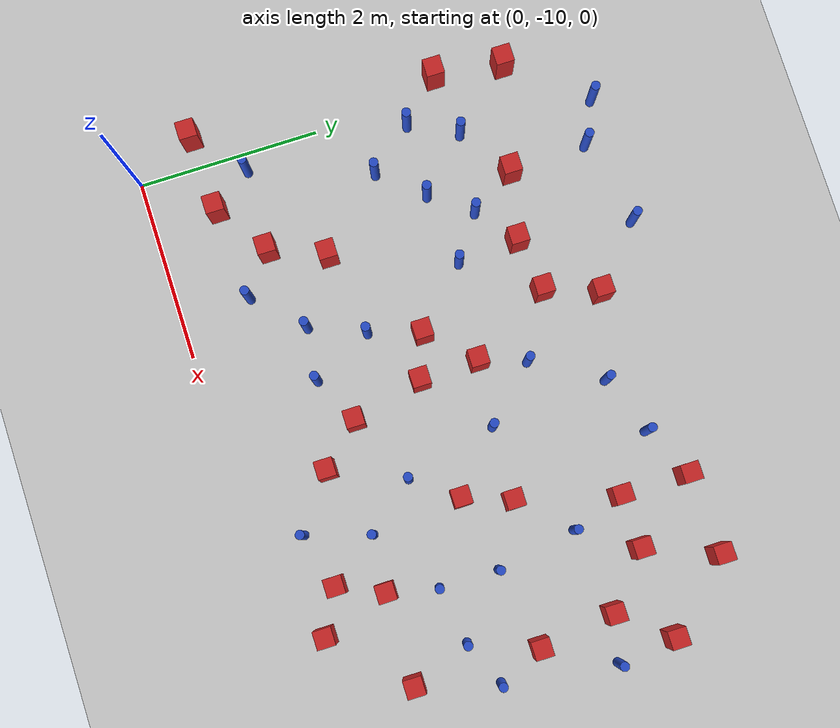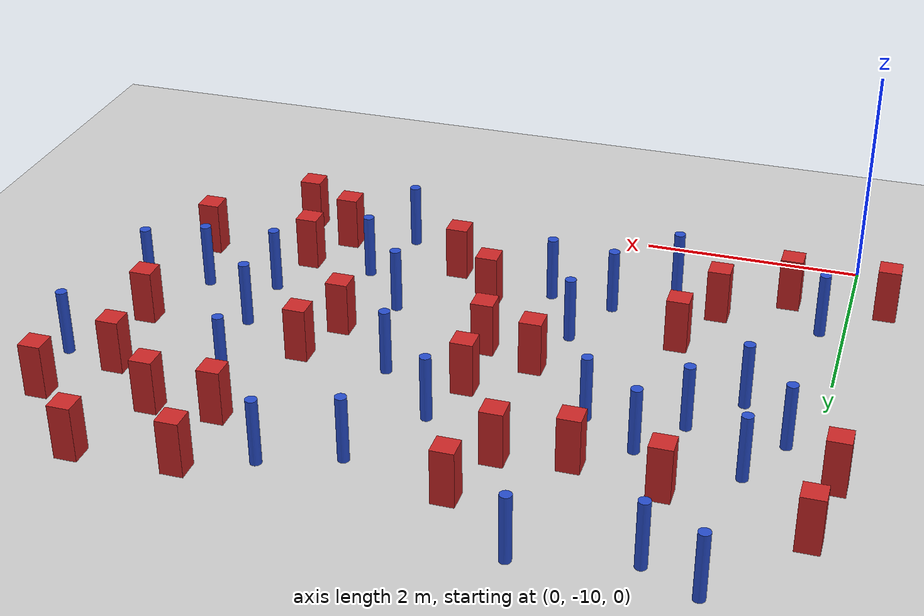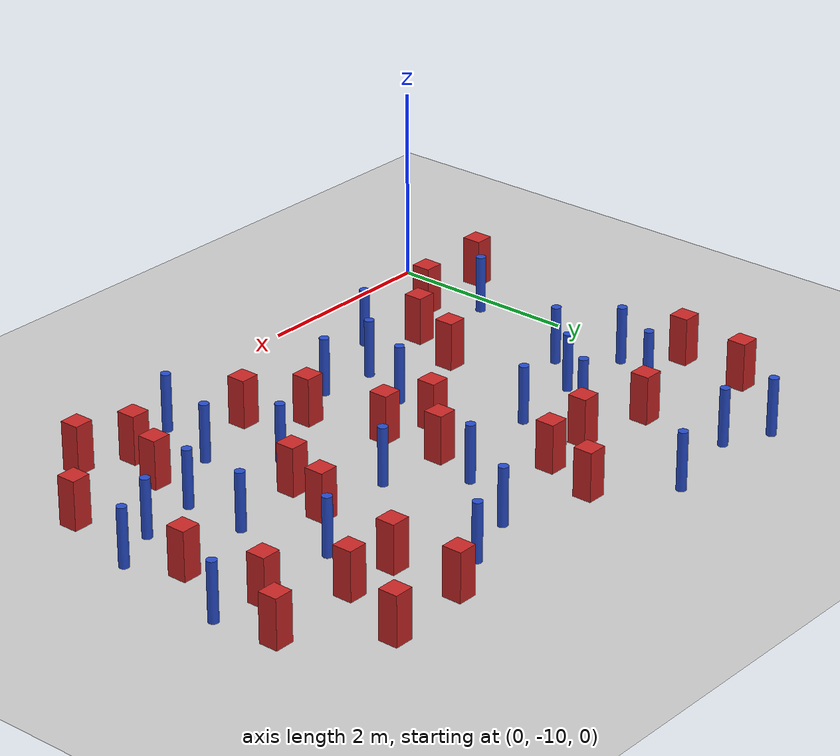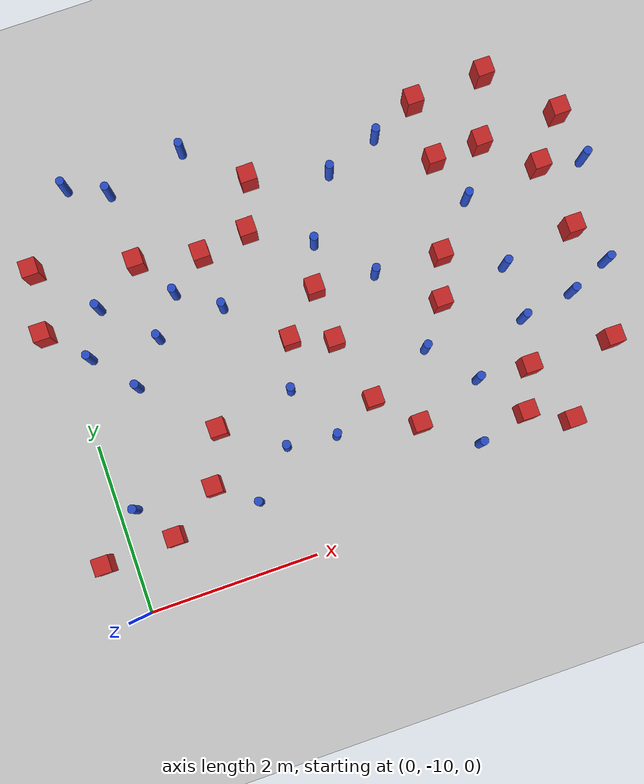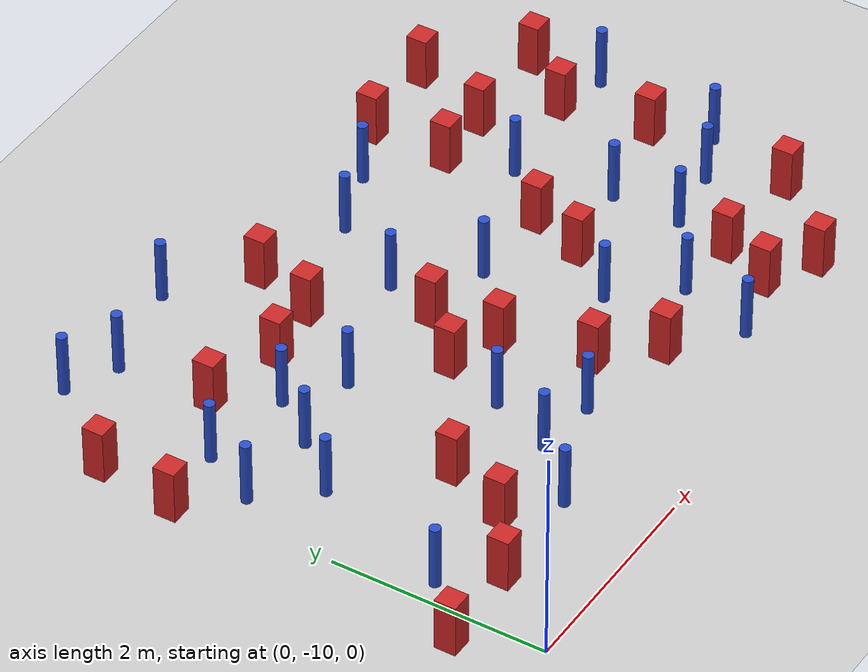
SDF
<sdf version="1.6">
 <world name="default">
  <model name="ground_plane">
   <static>1</static>
   <link name="link">
    <collision name="collision">
     <geometry><plane><normal>0 0 1</normal><size>100 100</size></plane></geometry>
     <surface><friction><ode><mu>100</mu><mu2>50</mu2></ode></friction></surface>
    </collision>
    <visual name="visual">
     <cast_shadows>0</cast_shadows>
     <geometry><plane><normal>0 0 1</normal><size>100 100</size></plane></geometry>
     <material>
      <ambient>1.0 1.0 1.0 1.0</ambient>
      <diffuse>0.8 0.8 0.8 1.0</diffuse>
      <specular>0.01 0.01 0.01 1.000000</specular>
     </material>
    </visual>
   </link>
  </model>
  <model name="pole_obstacle3">
   <static>true</static>
   <pose>5.00161453407 -6.65563241505 7.38925637345e-09 -8.47170692796e-08 1.24976764786e-08 -1.74513093032e-07</pose>
   <link name="link">
    <pose>0 0 0.3 0 -0 0</pose>
    <inertial>
     <mass>1</mass>
     <inertia><ixx>0.145833</ixx><ixy>0</ixy><ixz>0</ixz><iyy>0.145833</iyy><iyz>0</iyz><izz>0.125</izz></inertia>
    </inertial>
    <collision name="collision">
     <geometry><cylinder><radius>0.05</radius><length>.6</length></cylinder></geometry>
    </collision>
    <visual name="visual">
     <geometry><cylinder><radius>0.05</radius><length>.6</length></cylinder></geometry>
     <material>
      <script><name>Gazebo/Blue</name><uri>file://media/materials/scripts/gazebo.material</uri></script>
     </material>
    </visual>
   </link>
  </model>
  <model name="square_post_obstacle6">
   <static>true</static>
   <pose>6.05078648115 -7.38090235444 1.91545236811e-07 -7.35059704564e-06 1.12565212e-07 2.39332434364e-05</pose>
   <link name="link">
    <pose>0 0 0.25 0 -0 0</pose>
    <inertial>
     <mass>100</mass>
     <inertia>
      <ixx>0.166667</ixx>
      <ixy>0</ixy>
      <ixz>0</ixz>
      <iyy>0.166667</iyy>
      <iyz>0</iyz>
      <izz>0.166667</izz>
     </inertia>
    </inertial>
    <collision name="collision"><geometry><box><size>.2 .2 .5</size></box></geometry></collision>
    <visual name="visual">
     <geometry><box><size>.2 .2 .5</size></box></geometry>
     <material>
      <script><name>Gazebo/Red</name><uri>file://media/materials/scripts/gazebo.material</uri></script>
     </material>
    </visual>
   </link>
  </model>
  <model name="square_post_obstacle10">
   <static>true</static>
   <pose>2.50912233527 -7.55386749131 1.91545236811e-07 -7.35059704564e-06 1.12565212e-07 2.39332434364e-05</pose>
   <link name="link">
    <pose>0 0 0.25 0 -0 0</pose>
    <inertial>
     <mass>100</mass>
     <inertia>
      <ixx>0.166667</ixx>
      <ixy>0</ixy>
      <ixz>0</ixz>
      <iyy>0.166667</iyy>
      <iyz>0</iyz>
      <izz>0.166667</izz>
     </inertia>
    </inertial>
    <collision name="collision"><geometry><box><size>.2 .2 .5</size></box></geometry></collision>
    <visual name="visual">
     <geometry><box><size>.2 .2 .5</size></box></geometry>
     <material>
      <script><name>Gazebo/Red</name><uri>file://media/materials/scripts/gazebo.material</uri></script>
     </material>
    </visual>
   </link>
  </model>
  <model name="square_post_obstacle11">
   <static>true</static>
   <pose>2.98952658779 -7.73330978692 1.91545236811e-07 -7.35059704564e-06 1.12565212e-07 2.39332434364e-05</pose>
   <link name="link">
    <pose>0 0 0.25 0 -0 0</pose>
    <inertial>
     <mass>100</mass>
     <inertia>
      <ixx>0.166667</ixx>
      <ixy>0</ixy>
      <ixz>0</ixz>
      <iyy>0.166667</iyy>
      <iyz>0</iyz>
      <izz>0.166667</izz>
     </inertia>
    </inertial>
    <collision name="collision"><geometry><box><size>.2 .2 .5</size></box></geometry></collision>
    <visual name="visual">
     <geometry><box><size>.2 .2 .5</size></box></geometry>
     <material>
      <script><name>Gazebo/Red</name><uri>file://media/materials/scripts/gazebo.material</uri></script>
     </material>
    </visual>
   </link>
  </model>
  <model name="square_post_obstacle14">
   <static>true</static>
   <pose>4.31348551052 -7.69776963985 1.91545236811e-07 -7.35059704564e-06 1.12565212e-07 2.39332434364e-05</pose>
   <link name="link">
    <pose>0 0 0.25 0 -0 0</pose>
    <inertial>
     <mass>100</mass>
     <inertia>
      <ixx>0.166667</ixx>
      <ixy>0</ixy>
      <ixz>0</ixz>
      <iyy>0.166667</iyy>
      <iyz>0</iyz>
      <izz>0.166667</izz>
     </inertia>
    </inertial>
    <collision name="collision"><geometry><box><size>.2 .2 .5</size></box></geometry></collision>
    <visual name="visual">
     <geometry><box><size>.2 .2 .5</size></box></geometry>
     <material>
      <script><name>Gazebo/Red</name><uri>file://media/materials/scripts/gazebo.material</uri></script>
     </material>
    </visual>
   </link>
  </model>
  <model name="pole_obstacle10">
   <static>true</static>
   <pose>2.01584505865 -5.01099669691 7.38925637345e-09 -8.47170692799e-08 1.24976765014e-08 -1.7451309302e-07</pose>
   <link name="link">
    <pose>0 0 0.3 0 -0 0</pose>
    <inertial>
     <mass>1</mass>
     <inertia><ixx>0.145833</ixx><ixy>0</ixy><ixz>0</ixz><iyy>0.145833</iyy><iyz>0</iyz><izz>0.125</izz></inertia>
    </inertial>
    <collision name="collision">
     <geometry><cylinder><radius>0.05</radius><length>.6</length></cylinder></geometry>
    </collision>
    <visual name="visual">
     <geometry><cylinder><radius>0.05</radius><length>.6</length></cylinder></geometry>
     <material>
      <script><name>Gazebo/Blue</name><uri>file://media/materials/scripts/gazebo.material</uri></script>
     </material>
    </visual>
   </link>
  </model>
  <model name="square_post_obstacle29">
   <static>true</static>
   <pose>5.69340688387 -5.28129569406 1.91545236811e-07 -7.35059704564e-06 1.12565212e-07 2.39332434364e-05</pose>
   <link name="link">
    <pose>0 0 0.25 0 -0 0</pose>
    <inertial>
     <mass>100</mass>
     <inertia>
      <ixx>0.166667</ixx>
      <ixy>0</ixy>
      <ixz>0</ixz>
      <iyy>0.166667</iyy>
      <iyz>0</iyz>
      <izz>0.166667</izz>
     </inertia>
    </inertial>
    <collision name="collision"><geometry><box><size>.2 .2 .5</size></box></geometry></collision>
    <visual name="visual">
     <geometry><box><size>.2 .2 .5</size></box></geometry>
     <material>
      <script><name>Gazebo/Red</name><uri>file://media/materials/scripts/gazebo.material</uri></script>
     </material>
    </visual>
   </link>
  </model>
  <model name="pole_obstacle20">
   <static>true</static>
   <pose>1.07511665851 -7.0514755231 7.38925637345e-09 -8.47170692799e-08 1.24976765033e-08 -1.74513093018e-07</pose>
   <link name="link">
    <pose>0 0 0.3 0 -0 0</pose>
    <inertial>
     <mass>1</mass>
     <inertia><ixx>0.145833</ixx><ixy>0</ixy><ixz>0</ixz><iyy>0.145833</iyy><iyz>0</iyz><izz>0.125</izz></inertia>
    </inertial>
    <collision name="collision">
     <geometry><cylinder><radius>0.05</radius><length>.6</length></cylinder></geometry>
    </collision>
    <visual name="visual">
     <geometry><cylinder><radius>0.05</radius><length>.6</length></cylinder></geometry>
     <material>
      <script><name>Gazebo/Blue</name><uri>file://media/materials/scripts/gazebo.material</uri></script>
     </material>
    </visual>
   </link>
  </model>
  <model name="pole_obstacle26">
   <static>true</static>
   <pose>4.18921879778 -9.4074121447 7.38925637345e-09 -8.471706928e-08 1.24976765081e-08 -1.74513093015e-07</pose>
   <link name="link">
    <pose>0 0 0.3 0 -0 0</pose>
    <inertial>
     <mass>1</mass>
     <inertia><ixx>0.145833</ixx><ixy>0</ixy><ixz>0</ixz><iyy>0.145833</iyy><iyz>0</iyz><izz>0.125</izz></inertia>
    </inertial>
    <collision name="collision">
     <geometry><cylinder><radius>0.05</radius><length>.6</length></cylinder></geometry>
    </collision>
    <visual name="visual">
     <geometry><cylinder><radius>0.05</radius><length>.6</length></cylinder></geometry>
     <material>
      <script><name>Gazebo/Blue</name><uri>file://media/materials/scripts/gazebo.material</uri></script>
     </material>
    </visual>
   </link>
  </model>
  <model name="pole_obstacle36">
   <static>true</static>
   <pose>1.05467171235 -5.22719770016 7.38925637345e-09 -8.47170692799e-08 1.24976765033e-08 -1.74513093018e-07</pose>
   <link name="link">
    <pose>0 0 0.3 0 -0 0</pose>
    <inertial>
     <mass>1</mass>
     <inertia><ixx>0.145833</ixx><ixy>0</ixy><ixz>0</ixz><iyy>0.145833</iyy><iyz>0</iyz><izz>0.125</izz></inertia>
    </inertial>
    <collision name="collision">
     <geometry><cylinder><radius>0.05</radius><length>.6</length></cylinder></geometry>
    </collision>
    <visual name="visual">
     <geometry><cylinder><radius>0.05</radius><length>.6</length></cylinder></geometry>
     <material>
      <script><name>Gazebo/Blue</name><uri>file://media/materials/scripts/gazebo.material</uri></script>
     </material>
    </visual>
   </link>
  </model>
  <model name="square_post_obstacle36">
   <static>true</static>
   <pose>5.27091991104 -9.48905202881 1.91545236811e-07 -7.35059704564e-06 1.12565212e-07 2.39332434364e-05</pose>
   <link name="link">
    <pose>0 0 0.25 0 -0 0</pose>
    <inertial>
     <mass>100</mass>
     <inertia>
      <ixx>0.166667</ixx>
      <ixy>0</ixy>
      <ixz>0</ixz>
      <iyy>0.166667</iyy>
      <iyz>0</iyz>
      <izz>0.166667</izz>
     </inertia>
    </inertial>
    <collision name="collision"><geometry><box><size>.2 .2 .5</size></box></geometry></collision>
    <visual name="visual">
     <geometry><box><size>.2 .2 .5</size></box></geometry>
     <material>
      <script><name>Gazebo/Red</name><uri>file://media/materials/scripts/gazebo.material</uri></script>
     </material>
    </visual>
   </link>
  </model>
  <model name="pole_obstacle40">
   <static>true</static>
   <pose>3.14173892283 -6.57104107852 7.38925637345e-09 -8.47170692798e-08 1.24976765033e-08 -1.74513093019e-07</pose>
   <link name="link">
    <pose>0 0 0.3 0 -0 0</pose>
    <inertial>
     <mass>1</mass>
     <inertia><ixx>0.145833</ixx><ixy>0</ixy><ixz>0</ixz><iyy>0.145833</iyy><iyz>0</iyz><izz>0.125</izz></inertia>
    </inertial>
    <collision name="collision">
     <geometry><cylinder><radius>0.05</radius><length>.6</length></cylinder></geometry>
    </collision>
    <visual name="visual">
     <geometry><cylinder><radius>0.05</radius><length>.6</length></cylinder></geometry>
     <material>
      <script><name>Gazebo/Blue</name><uri>file://media/materials/scripts/gazebo.material</uri></script>
     </material>
    </visual>
   </link>
  </model>
  <model name="square_post_obstacle41">
   <static>true</static>
   <pose>3.60693150186 -8.96799437698 1.91545236811e-07 -7.35059704564e-06 1.12565212e-07 2.39332434364e-05</pose>
   <link name="link">
    <pose>0 0 0.25 0 -0 0</pose>
    <inertial>
     <mass>100</mass>
     <inertia>
      <ixx>0.166667</ixx>
      <ixy>0</ixy>
      <ixz>0</ixz>
      <iyy>0.166667</iyy>
      <iyz>0</iyz>
      <izz>0.166667</izz>
     </inertia>
    </inertial>
    <collision name="collision"><geometry><box><size>.2 .2 .5</size></box></geometry></collision>
    <visual name="visual">
     <geometry><box><size>.2 .2 .5</size></box></geometry>
     <material>
      <script><name>Gazebo/Red</name><uri>file://media/materials/scripts/gazebo.material</uri></script>
     </material>
    </visual>
   </link>
  </model>
  <model name="square_post_obstacle42">
   <static>true</static>
   <pose>6.37140110075 -6.01066714493 1.91545236811e-07 -7.35059704564e-06 1.12565212e-07 2.39332434364e-05</pose>
   <link name="link">
    <pose>0 0 0.25 0 -0 0</pose>
    <inertial>
     <mass>100</mass>
     <inertia>
      <ixx>0.166667</ixx>
      <ixy>0</ixy>
      <ixz>0</ixz>
      <iyy>0.166667</iyy>
      <iyz>0</iyz>
      <izz>0.166667</izz>
     </inertia>
    </inertial>
    <collision name="collision"><geometry><box><size>.2 .2 .5</size></box></geometry></collision>
    <visual name="visual">
     <geometry><box><size>.2 .2 .5</size></box></geometry>
     <material>
      <script><name>Gazebo/Red</name><uri>file://media/materials/scripts/gazebo.material</uri></script>
     </material>
    </visual>
   </link>
  </model>
  <model name="pole_obstacle47">
   <static>true</static>
   <pose>4.23477064526 -5.59500006516 7.38925637345e-09 -8.47170692796e-08 1.24976764786e-08 -1.74513093032e-07</pose>
   <link name="link">
    <pose>0 0 0.3 0 -0 0</pose>
    <inertial>
     <mass>1</mass>
     <inertia><ixx>0.145833</ixx><ixy>0</ixy><ixz>0</ixz><iyy>0.145833</iyy><iyz>0</iyz><izz>0.125</izz></inertia>
    </inertial>
    <collision name="collision">
     <geometry><cylinder><radius>0.05</radius><length>.6</length></cylinder></geometry>
    </collision>
    <visual name="visual">
     <geometry><cylinder><radius>0.05</radius><length>.6</length></cylinder></geometry>
     <material>
      <script><name>Gazebo/Blue</name><uri>file://media/materials/scripts/gazebo.material</uri></script>
     </material>
    </visual>
   </link>
  </model>
  <model name="square_post_obstacle55">
   <static>true</static>
   <pose>5.01877675959 -8.74681724922 1.91545236811e-07 -7.35059704564e-06 1.12565212e-07 2.39332434364e-05</pose>
   <link name="link">
    <pose>0 0 0.25 0 -0 0</pose>
    <inertial>
     <mass>100</mass>
     <inertia>
      <ixx>0.166667</ixx>
      <ixy>0</ixy>
      <ixz>0</ixz>
      <iyy>0.166667</iyy>
      <iyz>0</iyz>
      <izz>0.166667</izz>
     </inertia>
    </inertial>
    <collision name="collision"><geometry><box><size>.2 .2 .5</size></box></geometry></collision>
    <visual name="visual">
     <geometry><box><size>.2 .2 .5</size></box></geometry>
     <material>
      <script><name>Gazebo/Red</name><uri>file://media/materials/scripts/gazebo.material</uri></script>
     </material>
    </visual>
   </link>
  </model>
  <model name="pole_obstacle52">
   <static>true</static>
   <pose>1.57583910471 -9.21745637014 7.38925637345e-09 -8.47170692798e-08 1.24976764881e-08 -1.74513093027e-07</pose>
   <link name="link">
    <pose>0 0 0.3 0 -0 0</pose>
    <inertial>
     <mass>1</mass>
     <inertia><ixx>0.145833</ixx><ixy>0</ixy><ixz>0</ixz><iyy>0.145833</iyy><iyz>0</iyz><izz>0.125</izz></inertia>
    </inertial>
    <collision name="collision">
     <geometry><cylinder><radius>0.05</radius><length>.6</length></cylinder></geometry>
    </collision>
    <visual name="visual">
     <geometry><cylinder><radius>0.05</radius><length>.6</length></cylinder></geometry>
     <material>
      <script><name>Gazebo/Blue</name><uri>file://media/materials/scripts/gazebo.material</uri></script>
     </material>
    </visual>
   </link>
  </model>
  <model name="square_post_obstacle57">
   <static>true</static>
   <pose>1.09560624676 -6.1105834641 1.91545236811e-07 -7.35059704564e-06 1.12565212e-07 2.39332434364e-05</pose>
   <link name="link">
    <pose>0 0 0.25 0 -0 0</pose>
    <inertial>
     <mass>100</mass>
     <inertia>
      <ixx>0.166667</ixx>
      <ixy>0</ixy>
      <ixz>0</ixz>
      <iyy>0.166667</iyy>
      <iyz>0</iyz>
      <izz>0.166667</izz>
     </inertia>
    </inertial>
    <collision name="collision"><geometry><box><size>.2 .2 .5</size></box></geometry></collision>
    <visual name="visual">
     <geometry><box><size>.2 .2 .5</size></box></geometry>
     <material>
      <script><name>Gazebo/Red</name><uri>file://media/materials/scripts/gazebo.material</uri></script>
     </material>
    </visual>
   </link>
  </model>
  <model name="pole_obstacle62">
   <static>true</static>
   <pose>0.586006470978 -5.00266563167 7.38925637345e-09 -8.471706928e-08 1.24976765086e-08 -1.74513093015e-07</pose>
   <link name="link">
    <pose>0 0 0.3 0 -0 0</pose>
    <inertial>
     <mass>1</mass>
     <inertia><ixx>0.145833</ixx><ixy>0</ixy><ixz>0</ixz><iyy>0.145833</iyy><iyz>0</iyz><izz>0.125</izz></inertia>
    </inertial>
    <collision name="collision">
     <geometry><cylinder><radius>0.05</radius><length>.6</length></cylinder></geometry>
    </collision>
    <visual name="visual">
     <geometry><cylinder><radius>0.05</radius><length>.6</length></cylinder></geometry>
     <material>
      <script><name>Gazebo/Blue</name><uri>file://media/materials/scripts/gazebo.material</uri></script>
     </material>
    </visual>
   </link>
  </model>
  <model name="square_post_obstacle69">
   <static>true</static>
   <pose>2.65408206465 -5.58776047129 1.91545236811e-07 -7.35059704564e-06 1.12565212e-07 2.39332434364e-05</pose>
   <link name="link">
    <pose>0 0 0.25 0 -0 0</pose>
    <inertial>
     <mass>100</mass>
     <inertia>
      <ixx>0.166667</ixx>
      <ixy>0</ixy>
      <ixz>0</ixz>
      <iyy>0.166667</iyy>
      <iyz>0</iyz>
      <izz>0.166667</izz>
     </inertia>
    </inertial>
    <collision name="collision"><geometry><box><size>.2 .2 .5</size></box></geometry></collision>
    <visual name="visual">
     <geometry><box><size>.2 .2 .5</size></box></geometry>
     <material>
      <script><name>Gazebo/Red</name><uri>file://media/materials/scripts/gazebo.material</uri></script>
     </material>
    </visual>
   </link>
  </model>
  <model name="pole_obstacle67">
   <static>true</static>
   <pose>5.15801422053 -7.5465787388 7.38925637345e-09 -8.47170692796e-08 1.24976764786e-08 -1.74513093032e-07</pose>
   <link name="link">
    <pose>0 0 0.3 0 -0 0</pose>
    <inertial>
     <mass>1</mass>
     <inertia><ixx>0.145833</ixx><ixy>0</ixy><ixz>0</ixz><iyy>0.145833</iyy><iyz>0</iyz><izz>0.125</izz></inertia>
    </inertial>
    <collision name="collision">
     <geometry><cylinder><radius>0.05</radius><length>.6</length></cylinder></geometry>
    </collision>
    <visual name="visual">
     <geometry><cylinder><radius>0.05</radius><length>.6</length></cylinder></geometry>
     <material>
      <script><name>Gazebo/Blue</name><uri>file://media/materials/scripts/gazebo.material</uri></script>
     </material>
    </visual>
   </link>
  </model>
  <model name="square_post_obstacle73">
   <static>true</static>
   <pose>4.79727907932 -9.23521522652 1.91545236811e-07 -7.35059704564e-06 1.12565212e-07 2.39332434364e-05</pose>
   <link name="link">
    <pose>0 0 0.25 0 -0 0</pose>
    <inertial>
     <mass>100</mass>
     <inertia>
      <ixx>0.166667</ixx>
      <ixy>0</ixy>
      <ixz>0</ixz>
      <iyy>0.166667</iyy>
      <iyz>0</iyz>
      <izz>0.166667</izz>
     </inertia>
    </inertial>
    <collision name="collision"><geometry><box><size>.2 .2 .5</size></box></geometry></collision>
    <visual name="visual">
     <geometry><box><size>.2 .2 .5</size></box></geometry>
     <material>
      <script><name>Gazebo/Red</name><uri>file://media/materials/scripts/gazebo.material</uri></script>
     </material>
    </visual>
   </link>
  </model>
  <model name="pole_obstacle70">
   <static>true</static>
   <pose>2.07500734429 -8.72048961867 7.38925637345e-09 -8.47170692793e-08 1.24976764408e-08 -1.74513093041e-07</pose>
   <link name="link">
    <pose>0 0 0.3 0 -0 0</pose>
    <inertial>
     <mass>1</mass>
     <inertia><ixx>0.145833</ixx><ixy>0</ixy><ixz>0</ixz><iyy>0.145833</iyy><iyz>0</iyz><izz>0.125</izz></inertia>
    </inertial>
    <collision name="collision">
     <geometry><cylinder><radius>0.05</radius><length>.6</length></cylinder></geometry>
    </collision>
    <visual name="visual">
     <geometry><cylinder><radius>0.05</radius><length>.6</length></cylinder></geometry>
     <material>
      <script><name>Gazebo/Blue</name><uri>file://media/materials/scripts/gazebo.material</uri></script>
     </material>
    </visual>
   </link>
  </model>
  <model name="pole_obstacle76">
   <static>true</static>
   <pose>0.254293867741 -7.02089184477 7.38925637345e-09 -8.47170692799e-08 1.24976765101e-08 -1.74513093014e-07</pose>
   <link name="link">
    <pose>0 0 0.3 0 -0 0</pose>
    <inertial>
     <mass>1</mass>
     <inertia><ixx>0.145833</ixx><ixy>0</ixy><ixz>0</ixz><iyy>0.145833</iyy><iyz>0</iyz><izz>0.125</izz></inertia>
    </inertial>
    <collision name="collision">
     <geometry><cylinder><radius>0.05</radius><length>.6</length></cylinder></geometry>
    </collision>
    <visual name="visual">
     <geometry><cylinder><radius>0.05</radius><length>.6</length></cylinder></geometry>
     <material>
      <script><name>Gazebo/Blue</name><uri>file://media/materials/scripts/gazebo.material</uri></script>
     </material>
    </visual>
   </link>
  </model>
  <model name="square_post_obstacle81">
   <static>true</static>
   <pose>5.94193825845 -6.54380221645 1.91545236811e-07 -7.35059704564e-06 1.12565212e-07 2.39332434364e-05</pose>
   <link name="link">
    <pose>0 0 0.25 0 -0 0</pose>
    <inertial>
     <mass>100</mass>
     <inertia>
      <ixx>0.166667</ixx>
      <ixy>0</ixy>
      <ixz>0</ixz>
      <iyy>0.166667</iyy>
      <iyz>0</iyz>
      <izz>0.166667</izz>
     </inertia>
    </inertial>
    <collision name="collision"><geometry><box><size>.2 .2 .5</size></box></geometry></collision>
    <visual name="visual">
     <geometry><box><size>.2 .2 .5</size></box></geometry>
     <material>
      <script><name>Gazebo/Red</name><uri>file://media/materials/scripts/gazebo.material</uri></script>
     </material>
    </visual>
   </link>
  </model>
  <model name="pole_obstacle88">
   <static>true</static>
   <pose>3.95771335629 -8.16842878115 7.38925637345e-09 -8.47170692793e-08 1.24976764405e-08 -1.74513093041e-07</pose>
   <link name="link">
    <pose>0 0 0.3 0 -0 0</pose>
    <inertial>
     <mass>1</mass>
     <inertia><ixx>0.145833</ixx><ixy>0</ixy><ixz>0</ixz><iyy>0.145833</iyy><iyz>0</iyz><izz>0.125</izz></inertia>
    </inertial>
    <collision name="collision">
     <geometry><cylinder><radius>0.05</radius><length>.6</length></cylinder></geometry>
    </collision>
    <visual name="visual">
     <geometry><cylinder><radius>0.05</radius><length>.6</length></cylinder></geometry>
     <material>
      <script><name>Gazebo/Blue</name><uri>file://media/materials/scripts/gazebo.material</uri></script>
     </material>
    </visual>
   </link>
  </model>
  <model name="pole_obstacle93">
   <static>true</static>
   <pose>0.523946703772 -6.49540256584 7.38925637345e-09 -8.47170692799e-08 1.24976765073e-08 -1.74513093015e-07</pose>
   <link name="link">
    <pose>0 0 0.3 0 -0 0</pose>
    <inertial>
     <mass>1</mass>
     <inertia><ixx>0.145833</ixx><ixy>0</ixy><ixz>0</ixz><iyy>0.145833</iyy><iyz>0</iyz><izz>0.125</izz></inertia>
    </inertial>
    <collision name="collision">
     <geometry><cylinder><radius>0.05</radius><length>.6</length></cylinder></geometry>
    </collision>
    <visual name="visual">
     <geometry><cylinder><radius>0.05</radius><length>.6</length></cylinder></geometry>
     <material>
      <script><name>Gazebo/Blue</name><uri>file://media/materials/scripts/gazebo.material</uri></script>
     </material>
    </visual>
   </link>
  </model>
  <model name="pole_obstacle105">
   <static>true</static>
   <pose>3.58492762385 -5.83124893988 7.38925637345e-09 -8.47170692798e-08 1.24976765033e-08 -1.74513093019e-07</pose>
   <link name="link">
    <pose>0 0 0.3 0 -0 0</pose>
    <inertial>
     <mass>1</mass>
     <inertia><ixx>0.145833</ixx><ixy>0</ixy><ixz>0</ixz><iyy>0.145833</iyy><iyz>0</iyz><izz>0.125</izz></inertia>
    </inertial>
    <collision name="collision">
     <geometry><cylinder><radius>0.05</radius><length>.6</length></cylinder></geometry>
    </collision>
    <visual name="visual">
     <geometry><cylinder><radius>0.05</radius><length>.6</length></cylinder></geometry>
     <material>
      <script><name>Gazebo/Blue</name><uri>file://media/materials/scripts/gazebo.material</uri></script>
     </material>
    </visual>
   </link>
  </model>
  <model name="pole_obstacle106">
   <static>true</static>
   <pose>6.28519339228 -7.884198596 7.38925637345e-09 -8.47170692796e-08 1.24976764786e-08 -1.74513093032e-07</pose>
   <link name="link">
    <pose>0 0 0.3 0 -0 0</pose>
    <inertial>
     <mass>1</mass>
     <inertia><ixx>0.145833</ixx><ixy>0</ixy><ixz>0</ixz><iyy>0.145833</iyy><iyz>0</iyz><izz>0.125</izz></inertia>
    </inertial>
    <collision name="collision">
     <geometry><cylinder><radius>0.05</radius><length>.6</length></cylinder></geometry>
    </collision>
    <visual name="visual">
     <geometry><cylinder><radius>0.05</radius><length>.6</length></cylinder></geometry>
     <material>
      <script><name>Gazebo/Blue</name><uri>file://media/materials/scripts/gazebo.material</uri></script>
     </material>
    </visual>
   </link>
  </model>
  <model name="pole_obstacle115">
   <static>true</static>
   <pose>2.6579866676 -8.78523901186 7.38925637345e-09 -8.47170692793e-08 1.24976764408e-08 -1.74513093041e-07</pose>
   <link name="link">
    <pose>0 0 0.3 0 -0 0</pose>
    <inertial>
     <mass>1</mass>
     <inertia><ixx>0.145833</ixx><ixy>0</ixy><ixz>0</ixz><iyy>0.145833</iyy><iyz>0</iyz><izz>0.125</izz></inertia>
    </inertial>
    <collision name="collision">
     <geometry><cylinder><radius>0.05</radius><length>.6</length></cylinder></geometry>
    </collision>
    <visual name="visual">
     <geometry><cylinder><radius>0.05</radius><length>.6</length></cylinder></geometry>
     <material>
      <script><name>Gazebo/Blue</name><uri>file://media/materials/scripts/gazebo.material</uri></script>
     </material>
    </visual>
   </link>
  </model>
  <model name="square_post_obstacle109">
   <static>true</static>
   <pose>2.96975866536 -7.07996548812 1.91545236811e-07 -7.35059704564e-06 1.12565212e-07 2.39332434364e-05</pose>
   <link name="link">
    <pose>0 0 0.25 0 -0 0</pose>
    <inertial>
     <mass>100</mass>
     <inertia>
      <ixx>0.166667</ixx>
      <ixy>0</ixy>
      <ixz>0</ixz>
      <iyy>0.166667</iyy>
      <iyz>0</iyz>
      <izz>0.166667</izz>
     </inertia>
    </inertial>
    <collision name="collision"><geometry><box><size>.2 .2 .5</size></box></geometry></collision>
    <visual name="visual">
     <geometry><box><size>.2 .2 .5</size></box></geometry>
     <material>
      <script><name>Gazebo/Red</name><uri>file://media/materials/scripts/gazebo.material</uri></script>
     </material>
    </visual>
   </link>
  </model>
  <model name="square_post_obstacle110">
   <static>true</static>
   <pose>4.79668433501 -6.08466083333 1.91545236811e-07 -7.35059704564e-06 1.12565212e-07 2.39332434364e-05</pose>
   <link name="link">
    <pose>0 0 0.25 0 -0 0</pose>
    <inertial>
     <mass>100</mass>
     <inertia>
      <ixx>0.166667</ixx>
      <ixy>0</ixy>
      <ixz>0</ixz>
      <iyy>0.166667</iyy>
      <iyz>0</iyz>
      <izz>0.166667</izz>
     </inertia>
    </inertial>
    <collision name="collision"><geometry><box><size>.2 .2 .5</size></box></geometry></collision>
    <visual name="visual">
     <geometry><box><size>.2 .2 .5</size></box></geometry>
     <material>
      <script><name>Gazebo/Red</name><uri>file://media/materials/scripts/gazebo.material</uri></script>
     </material>
    </visual>
   </link>
  </model>
  <model name="square_post_obstacle111">
   <static>true</static>
   <pose>-0.315592153126 -9.32040250138 1.91545236811e-07 -7.35059704564e-06 1.12565212e-07 2.39332434364e-05</pose>
   <link name="link">
    <pose>0 0 0.25 0 -0 0</pose>
    <inertial>
     <mass>100</mass>
     <inertia>
      <ixx>0.166667</ixx>
      <ixy>0</ixy>
      <ixz>0</ixz>
      <iyy>0.166667</iyy>
      <iyz>0</iyz>
      <izz>0.166667</izz>
     </inertia>
    </inertial>
    <collision name="collision"><geometry><box><size>.2 .2 .5</size></box></geometry></collision>
    <visual name="visual">
     <geometry><box><size>.2 .2 .5</size></box></geometry>
     <material>
      <script><name>Gazebo/Red</name><uri>file://media/materials/scripts/gazebo.material</uri></script>
     </material>
    </visual>
   </link>
  </model>
  <model name="pole_obstacle128">
   <static>true</static>
   <pose>1.4116408151 -6.60987289272 7.38925637345e-09 -8.47170692799e-08 1.24976765033e-08 -1.74513093018e-07</pose>
   <link name="link">
    <pose>0 0 0.3 0 -0 0</pose>
    <inertial>
     <mass>1</mass>
     <inertia><ixx>0.145833</ixx><ixy>0</ixy><ixz>0</ixz><iyy>0.145833</iyy><iyz>0</iyz><izz>0.125</izz></inertia>
    </inertial>
    <collision name="collision">
     <geometry><cylinder><radius>0.05</radius><length>.6</length></cylinder></geometry>
    </collision>
    <visual name="visual">
     <geometry><cylinder><radius>0.05</radius><length>.6</length></cylinder></geometry>
     <material>
      <script><name>Gazebo/Blue</name><uri>file://media/materials/scripts/gazebo.material</uri></script>
     </material>
    </visual>
   </link>
  </model>
  <model name="square_post_obstacle114">
   <static>true</static>
   <pose>-0.0765258356455 -5.82317347467 1.91545236811e-07 -7.35059704564e-06 1.12565212e-07 2.39332434364e-05</pose>
   <link name="link">
    <pose>0 0 0.25 0 -0 0</pose>
    <inertial>
     <mass>100</mass>
     <inertia>
      <ixx>0.166667</ixx>
      <ixy>0</ixy>
      <ixz>0</ixz>
      <iyy>0.166667</iyy>
      <iyz>0</iyz>
      <izz>0.166667</izz>
     </inertia>
    </inertial>
    <collision name="collision"><geometry><box><size>.2 .2 .5</size></box></geometry></collision>
    <visual name="visual">
     <geometry><box><size>.2 .2 .5</size></box></geometry>
     <material>
      <script><name>Gazebo/Red</name><uri>file://media/materials/scripts/gazebo.material</uri></script>
     </material>
    </visual>
   </link>
  </model>
  <model name="square_post_obstacle121">
   <static>true</static>
   <pose>6.02450490833 -8.7530494179 1.91545236811e-07 -7.35059704564e-06 1.12565212e-07 2.39332434364e-05</pose>
   <link name="link">
    <pose>0 0 0.25 0 -0 0</pose>
    <inertial>
     <mass>100</mass>
     <inertia>
      <ixx>0.166667</ixx>
      <ixy>0</ixy>
      <ixz>0</ixz>
      <iyy>0.166667</iyy>
      <iyz>0</iyz>
      <izz>0.166667</izz>
     </inertia>
    </inertial>
    <collision name="collision"><geometry><box><size>.2 .2 .5</size></box></geometry></collision>
    <visual name="visual">
     <geometry><box><size>.2 .2 .5</size></box></geometry>
     <material>
      <script><name>Gazebo/Red</name><uri>file://media/materials/scripts/gazebo.material</uri></script>
     </material>
    </visual>
   </link>
  </model>
  <model name="pole_obstacle141">
   <static>true</static>
   <pose>0.213506838867 -8.83967705717 7.38925637345e-09 -8.47170692797e-08 1.24976764785e-08 -1.74513093032e-07</pose>
   <link name="link">
    <pose>0 0 0.3 0 -0 0</pose>
    <inertial>
     <mass>1</mass>
     <inertia><ixx>0.145833</ixx><ixy>0</ixy><ixz>0</ixz><iyy>0.145833</iyy><iyz>0</iyz><izz>0.125</izz></inertia>
    </inertial>
    <collision name="collision">
     <geometry><cylinder><radius>0.05</radius><length>.6</length></cylinder></geometry>
    </collision>
    <visual name="visual">
     <geometry><cylinder><radius>0.05</radius><length>.6</length></cylinder></geometry>
     <material>
      <script><name>Gazebo/Blue</name><uri>file://media/materials/scripts/gazebo.material</uri></script>
     </material>
    </visual>
   </link>
  </model>
  <model name="square_post_obstacle127">
   <static>true</static>
   <pose>1.38849927669 -8.27175822131 1.91545236811e-07 -7.35059704564e-06 1.12565212e-07 2.39332434364e-05</pose>
   <link name="link">
    <pose>0 0 0.25 0 -0 0</pose>
    <inertial>
     <mass>100</mass>
     <inertia>
      <ixx>0.166667</ixx>
      <ixy>0</ixy>
      <ixz>0</ixz>
      <iyy>0.166667</iyy>
      <iyz>0</iyz>
      <izz>0.166667</izz>
     </inertia>
    </inertial>
    <collision name="collision"><geometry><box><size>.2 .2 .5</size></box></geometry></collision>
    <visual name="visual">
     <geometry><box><size>.2 .2 .5</size></box></geometry>
     <material>
      <script><name>Gazebo/Red</name><uri>file://media/materials/scripts/gazebo.material</uri></script>
     </material>
    </visual>
   </link>
  </model>
  <model name="square_post_obstacle130">
   <static>true</static>
   <pose>1.84689373424 -6.27342040742 1.91545236811e-07 -7.35059704564e-06 1.12565212e-07 2.39332434364e-05</pose>
   <link name="link">
    <pose>0 0 0.25 0 -0 0</pose>
    <inertial>
     <mass>100</mass>
     <inertia>
      <ixx>0.166667</ixx>
      <ixy>0</ixy>
      <ixz>0</ixz>
      <iyy>0.166667</iyy>
      <iyz>0</iyz>
      <izz>0.166667</izz>
     </inertia>
    </inertial>
    <collision name="collision"><geometry><box><size>.2 .2 .5</size></box></geometry></collision>
    <visual name="visual">
     <geometry><box><size>.2 .2 .5</size></box></geometry>
     <material>
      <script><name>Gazebo/Red</name><uri>file://media/materials/scripts/gazebo.material</uri></script>
     </material>
    </visual>
   </link>
  </model>
  <model name="pole_obstacle145">
   <static>true</static>
   <pose>3.69605412443 -7.14499272693 7.38925637345e-09 -8.47170692798e-08 1.24976765033e-08 -1.74513093019e-07</pose>
   <link name="link">
    <pose>0 0 0.3 0 -0 0</pose>
    <inertial>
     <mass>1</mass>
     <inertia><ixx>0.145833</ixx><ixy>0</ixy><ixz>0</ixz><iyy>0.145833</iyy><iyz>0</iyz><izz>0.125</izz></inertia>
    </inertial>
    <collision name="collision">
     <geometry><cylinder><radius>0.05</radius><length>.6</length></cylinder></geometry>
    </collision>
    <visual name="visual">
     <geometry><cylinder><radius>0.05</radius><length>.6</length></cylinder></geometry>
     <material>
      <script><name>Gazebo/Blue</name><uri>file://media/materials/scripts/gazebo.material</uri></script>
     </material>
    </visual>
   </link>
  </model>
  <model name="pole_obstacle152">
   <static>true</static>
   <pose>1.89136954441 -6.94572565942 7.38925637345e-09 -8.47170692799e-08 1.24976765033e-08 -1.74513093018e-07</pose>
   <link name="link">
    <pose>0 0 0.3 0 -0 0</pose>
    <inertial>
     <mass>1</mass>
     <inertia><ixx>0.145833</ixx><ixy>0</ixy><ixz>0</ixz><iyy>0.145833</iyy><iyz>0</iyz><izz>0.125</izz></inertia>
    </inertial>
    <collision name="collision">
     <geometry><cylinder><radius>0.05</radius><length>.6</length></cylinder></geometry>
    </collision>
    <visual name="visual">
     <geometry><cylinder><radius>0.05</radius><length>.6</length></cylinder></geometry>
     <material>
      <script><name>Gazebo/Blue</name><uri>file://media/materials/scripts/gazebo.material</uri></script>
     </material>
    </visual>
   </link>
  </model>
  <model name="square_post_obstacle150">
   <static>true</static>
   <pose>0.54428633777 -9.27712551568 1.91545236811e-07 -7.35059704564e-06 1.12565212e-07 2.39332434364e-05</pose>
   <link name="link">
    <pose>0 0 0.25 0 -0 0</pose>
    <inertial>
     <mass>100</mass>
     <inertia>
      <ixx>0.166667</ixx>
      <ixy>0</ixy>
      <ixz>0</ixz>
      <iyy>0.166667</iyy>
      <iyz>0</iyz>
      <izz>0.166667</izz>
     </inertia>
    </inertial>
    <collision name="collision"><geometry><box><size>.2 .2 .5</size></box></geometry></collision>
    <visual name="visual">
     <geometry><box><size>.2 .2 .5</size></box></geometry>
     <material>
      <script><name>Gazebo/Red</name><uri>file://media/materials/scripts/gazebo.material</uri></script>
     </material>
    </visual>
   </link>
  </model>
  <model name="pole_obstacle162">
   <static>true</static>
   <pose>6.45965889574 -6.64549611417 7.38925637345e-09 -8.47170692796e-08 1.24976764786e-08 -1.74513093032e-07</pose>
   <link name="link">
    <pose>0 0 0.3 0 -0 0</pose>
    <inertial>
     <mass>1</mass>
     <inertia><ixx>0.145833</ixx><ixy>0</ixy><ixz>0</ixz><iyy>0.145833</iyy><iyz>0</iyz><izz>0.125</izz></inertia>
    </inertial>
    <collision name="collision">
     <geometry><cylinder><radius>0.05</radius><length>.6</length></cylinder></geometry>
    </collision>
    <visual name="visual">
     <geometry><cylinder><radius>0.05</radius><length>.6</length></cylinder></geometry>
     <material>
      <script><name>Gazebo/Blue</name><uri>file://media/materials/scripts/gazebo.material</uri></script>
     </material>
    </visual>
   </link>
  </model>
  <model name="pole_obstacle174">
   <static>true</static>
   <pose>0.669884124913 -7.51529568208 7.38925637345e-09 -8.471706928e-08 1.24976765086e-08 -1.74513093015e-07</pose>
   <link name="link">
    <pose>0 0 0.3 0 -0 0</pose>
    <inertial>
     <mass>1</mass>
     <inertia><ixx>0.145833</ixx><ixy>0</ixy><ixz>0</ixz><iyy>0.145833</iyy><iyz>0</iyz><izz>0.125</izz></inertia>
    </inertial>
    <collision name="collision">
     <geometry><cylinder><radius>0.05</radius><length>.6</length></cylinder></geometry>
    </collision>
    <visual name="visual">
     <geometry><cylinder><radius>0.05</radius><length>.6</length></cylinder></geometry>
     <material>
      <script><name>Gazebo/Blue</name><uri>file://media/materials/scripts/gazebo.material</uri></script>
     </material>
    </visual>
   </link>
  </model>
  <model name="square_post_obstacle168">
   <static>true</static>
   <pose>2.44715602733 -6.18358601092 1.91545236811e-07 -7.35059704564e-06 1.12565212e-07 2.39332434364e-05</pose>
   <link name="link">
    <pose>0 0 0.25 0 -0 0</pose>
    <inertial>
     <mass>100</mass>
     <inertia>
      <ixx>0.166667</ixx>
      <ixy>0</ixy>
      <ixz>0</ixz>
      <iyy>0.166667</iyy>
      <iyz>0</iyz>
      <izz>0.166667</izz>
     </inertia>
    </inertial>
    <collision name="collision"><geometry><box><size>.2 .2 .5</size></box></geometry></collision>
    <visual name="visual">
     <geometry><box><size>.2 .2 .5</size></box></geometry>
     <material>
      <script><name>Gazebo/Red</name><uri>file://media/materials/scripts/gazebo.material</uri></script>
     </material>
    </visual>
   </link>
  </model>
  <model name="pole_obstacle184">
   <static>true</static>
   <pose>5.14902098047 -8.20239209556 7.38925637345e-09 -8.471706928e-08 1.24976765081e-08 -1.74513093015e-07</pose>
   <link name="link">
    <pose>0 0 0.3 0 -0 0</pose>
    <inertial>
     <mass>1</mass>
     <inertia><ixx>0.145833</ixx><ixy>0</ixy><ixz>0</ixz><iyy>0.145833</iyy><iyz>0</iyz><izz>0.125</izz></inertia>
    </inertial>
    <collision name="collision">
     <geometry><cylinder><radius>0.05</radius><length>.6</length></cylinder></geometry>
    </collision>
    <visual name="visual">
     <geometry><cylinder><radius>0.05</radius><length>.6</length></cylinder></geometry>
     <material>
      <script><name>Gazebo/Blue</name><uri>file://media/materials/scripts/gazebo.material</uri></script>
     </material>
    </visual>
   </link>
  </model>
  <model name="square_post_obstacle173">
   <static>true</static>
   <pose>3.18709033317 -8.52531223545 1.91545236811e-07 -7.35059704564e-06 1.12565212e-07 2.39332434364e-05</pose>
   <link name="link">
    <pose>0 0 0.25 0 -0 0</pose>
    <inertial>
     <mass>100</mass>
     <inertia>
      <ixx>0.166667</ixx>
      <ixy>0</ixy>
      <ixz>0</ixz>
      <iyy>0.166667</iyy>
      <iyz>0</iyz>
      <izz>0.166667</izz>
     </inertia>
    </inertial>
    <collision name="collision"><geometry><box><size>.2 .2 .5</size></box></geometry></collision>
    <visual name="visual">
     <geometry><box><size>.2 .2 .5</size></box></geometry>
     <material>
      <script><name>Gazebo/Red</name><uri>file://media/materials/scripts/gazebo.material</uri></script>
     </material>
    </visual>
   </link>
  </model>
  <model name="square_post_obstacle179">
   <static>true</static>
   <pose>5.38567446867 -6.06049664129 1.91545236811e-07 -7.35059704564e-06 1.12565212e-07 2.39332434364e-05</pose>
   <link name="link">
    <pose>0 0 0.25 0 -0 0</pose>
    <inertial>
     <mass>100</mass>
     <inertia>
      <ixx>0.166667</ixx>
      <ixy>0</ixy>
      <ixz>0</ixz>
      <iyy>0.166667</iyy>
      <iyz>0</iyz>
      <izz>0.166667</izz>
     </inertia>
    </inertial>
    <collision name="collision"><geometry><box><size>.2 .2 .5</size></box></geometry></collision>
    <visual name="visual">
     <geometry><box><size>.2 .2 .5</size></box></geometry>
     <material>
      <script><name>Gazebo/Red</name><uri>file://media/materials/scripts/gazebo.material</uri></script>
     </material>
    </visual>
   </link>
  </model>
  <model name="square_post_obstacle188">
   <static>true</static>
   <pose>4.79693648833 -5.33742536421 1.91545236811e-07 -7.35059704564e-06 1.12565212e-07 2.39332434364e-05</pose>
   <link name="link">
    <pose>0 0 0.25 0 -0 0</pose>
    <inertial>
     <mass>100</mass>
     <inertia>
      <ixx>0.166667</ixx>
      <ixy>0</ixy>
      <ixz>0</ixz>
      <iyy>0.166667</iyy>
      <iyz>0</iyz>
      <izz>0.166667</izz>
     </inertia>
    </inertial>
    <collision name="collision"><geometry><box><size>.2 .2 .5</size></box></geometry></collision>
    <visual name="visual">
     <geometry><box><size>.2 .2 .5</size></box></geometry>
     <material>
      <script><name>Gazebo/Red</name><uri>file://media/materials/scripts/gazebo.material</uri></script>
     </material>
    </visual>
   </link>
  </model>
  <model name="pole_obstacle192">
   <static>true</static>
   <pose>2.32527145841 -8.12027934846 7.38925637345e-09 -8.47170692793e-08 1.24976764408e-08 -1.74513093041e-07</pose>
   <link name="link">
    <pose>0 0 0.3 0 -0 0</pose>
    <inertial>
     <mass>1</mass>
     <inertia><ixx>0.145833</ixx><ixy>0</ixy><ixz>0</ixz><iyy>0.145833</iyy><iyz>0</iyz><izz>0.125</izz></inertia>
    </inertial>
    <collision name="collision">
     <geometry><cylinder><radius>0.05</radius><length>.6</length></cylinder></geometry>
    </collision>
    <visual name="visual">
     <geometry><cylinder><radius>0.05</radius><length>.6</length></cylinder></geometry>
     <material>
      <script><name>Gazebo/Blue</name><uri>file://media/materials/scripts/gazebo.material</uri></script>
     </material>
    </visual>
   </link>
  </model>
  <model name="pole_obstacle195">
   <static>true</static>
   <pose>5.78257693692 -8.09898615776 7.38925637345e-09 -8.471706928e-08 1.24976765081e-08 -1.74513093015e-07</pose>
   <link name="link">
    <pose>0 0 0.3 0 -0 0</pose>
    <inertial>
     <mass>1</mass>
     <inertia><ixx>0.145833</ixx><ixy>0</ixy><ixz>0</ixz><iyy>0.145833</iyy><iyz>0</iyz><izz>0.125</izz></inertia>
    </inertial>
    <collision name="collision">
     <geometry><cylinder><radius>0.05</radius><length>.6</length></cylinder></geometry>
    </collision>
    <visual name="visual">
     <geometry><cylinder><radius>0.05</radius><length>.6</length></cylinder></geometry>
     <material>
      <script><name>Gazebo/Blue</name><uri>file://media/materials/scripts/gazebo.material</uri></script>
     </material>
    </visual>
   </link>
  </model>
  <model name="pole_obstacle199">
   <static>true</static>
   <pose>4.40675569437 -8.70217496117 7.38925637345e-09 -8.471706928e-08 1.24976765081e-08 -1.74513093015e-07</pose>
   <link name="link">
    <pose>0 0 0.3 0 -0 0</pose>
    <inertial>
     <mass>1</mass>
     <inertia><ixx>0.145833</ixx><ixy>0</ixy><ixz>0</ixz><iyy>0.145833</iyy><iyz>0</iyz><izz>0.125</izz></inertia>
    </inertial>
    <collision name="collision">
     <geometry><cylinder><radius>0.05</radius><length>.6</length></cylinder></geometry>
    </collision>
    <visual name="visual">
     <geometry><cylinder><radius>0.05</radius><length>.6</length></cylinder></geometry>
     <material>
      <script><name>Gazebo/Blue</name><uri>file://media/materials/scripts/gazebo.material</uri></script>
     </material>
    </visual>
   </link>
  </model>
  <model name="square_post_obstacle200">
   <static>true</static>
   <pose>1.13568436224 -8.88017581525 1.91545236811e-07 -7.35059704564e-06 1.12565212e-07 2.39332434364e-05</pose>
   <link name="link">
    <pose>0 0 0.25 0 -0 0</pose>
    <inertial>
     <mass>100</mass>
     <inertia>
      <ixx>0.166667</ixx>
      <ixy>0</ixy>
      <ixz>0</ixz>
      <iyy>0.166667</iyy>
      <iyz>0</iyz>
      <izz>0.166667</izz>
     </inertia>
    </inertial>
    <collision name="collision"><geometry><box><size>.2 .2 .5</size></box></geometry></collision>
    <visual name="visual">
     <geometry><box><size>.2 .2 .5</size></box></geometry>
     <material>
      <script><name>Gazebo/Red</name><uri>file://media/materials/scripts/gazebo.material</uri></script>
     </material>
    </visual>
   </link>
  </model>
  <model name="square_post_obstacle211">
   <static>true</static>
   <pose>4.50211945009 -7.1779921409 1.91545236811e-07 -7.35059704564e-06 1.12565212e-07 2.39332434364e-05</pose>
   <link name="link">
    <pose>0 0 0.25 0 -0 0</pose>
    <inertial>
     <mass>100</mass>
     <inertia>
      <ixx>0.166667</ixx>
      <ixy>0</ixy>
      <ixz>0</ixz>
      <iyy>0.166667</iyy>
      <iyz>0</iyz>
      <izz>0.166667</izz>
     </inertia>
    </inertial>
    <collision name="collision"><geometry><box><size>.2 .2 .5</size></box></geometry></collision>
    <visual name="visual">
     <geometry><box><size>.2 .2 .5</size></box></geometry>
     <material>
      <script><name>Gazebo/Red</name><uri>file://media/materials/scripts/gazebo.material</uri></script>
     </material>
    </visual>
   </link>
  </model>
  <model name="square_post_obstacle213">
   <static>true</static>
   <pose>-0.178207091639 -6.58066778856 1.91545236811e-07 -7.35059704564e-06 1.12565212e-07 2.39332434364e-05</pose>
   <link name="link">
    <pose>0 0 0.25 0 -0 0</pose>
    <inertial>
     <mass>100</mass>
     <inertia>
      <ixx>0.166667</ixx>
      <ixy>0</ixy>
      <ixz>0</ixz>
      <iyy>0.166667</iyy>
      <iyz>0</iyz>
      <izz>0.166667</izz>
     </inertia>
    </inertial>
    <collision name="collision"><geometry><box><size>.2 .2 .5</size></box></geometry></collision>
    <visual name="visual">
     <geometry><box><size>.2 .2 .5</size></box></geometry>
     <material>
      <script><name>Gazebo/Red</name><uri>file://media/materials/scripts/gazebo.material</uri></script>
     </material>
    </visual>
   </link>
  </model>
 </world>
</sdf>
